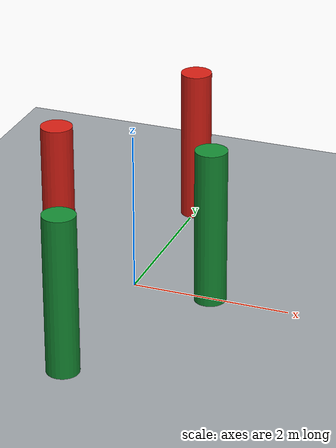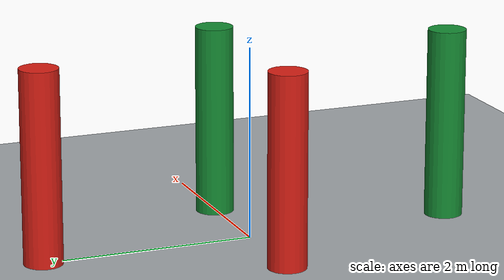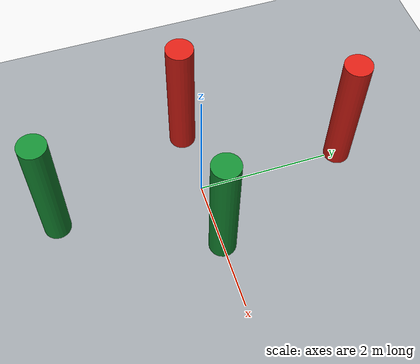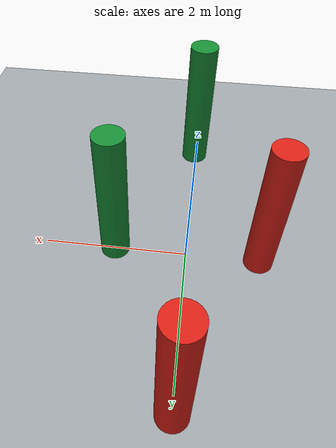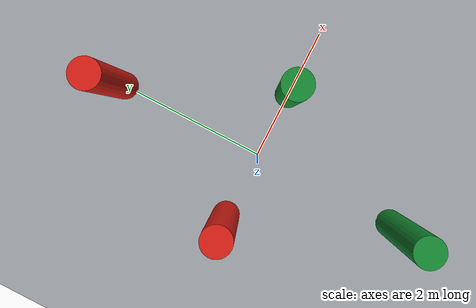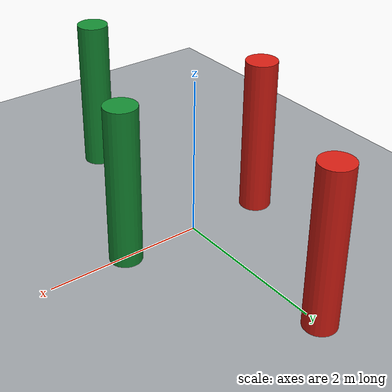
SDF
<sdf version="1.6">
 <world name="sunray150_single_uav_competition_light">
  <physics name="default_physics" type="ode">
   <gravity>0 0 -9.8066</gravity>
   <max_step_size>0.004</max_step_size>
   <real_time_factor>1.0</real_time_factor>
   <real_time_update_rate>250</real_time_update_rate>
  </physics>
  <plugin filename="ignition-gazebo-physics-system" name="gz::sim::systems::Physics"/>
  <plugin filename="ignition-gazebo-user-commands-system" name="gz::sim::systems::UserCommands"/>
  <plugin filename="ignition-gazebo-scene-broadcaster-system" name="gz::sim::systems::SceneBroadcaster"/>
  <plugin filename="ignition-gazebo-sensors-system" name="gz::sim::systems::Sensors">
   <render_engine>ogre</render_engine>
  </plugin>
  <plugin filename="ignition-gazebo-imu-system" name="gz::sim::systems::Imu"/>
  <scene><ambient>0.75 0.75 0.75 1</ambient><background>0.82 0.86 0.9 1</background><shadows>0</shadows></scene>
  <light type="directional" name="sun">
   <cast_shadows>false</cast_shadows>
   <pose>0 0 100 0 0 0</pose>
   <diffuse>0.8 0.8 0.8 1</diffuse>
   <specular>0.9 0.9 0.9 1</specular>
   <direction>0.2 0.2 -0.9</direction>
  </light>
  <model name="review_ground_plane">
   <static>true</static>
   <link name="link">
    <collision name="collision">
     <geometry><plane><normal>0 0 1</normal><size>18 18</size></plane></geometry>
    </collision>
    <visual name="visual">
     <geometry><plane><normal>0 0 1</normal><size>18 18</size></plane></geometry>
     <material>
      <ambient>0.62 0.64 0.66 1</ambient>
      <diffuse>0.62 0.64 0.66 1</diffuse>
      <specular>0.05 0.05 0.05 1</specular>
     </material>
    </visual>
   </link>
  </model>
  <include>
   <uri>model://cylinder_20cm</uri>
   <name>obstacle_center_left</name>
   <pose>-1.0 0.0 1.0 0 0 0</pose>
   <static>true</static>
  </include>
  <include>
   <uri>model://cylinder_20cm_green</uri>
   <name>obstacle_center_right</name>
   <pose>1.0 0.0 1.0 0 0 0</pose>
   <static>true</static>
  </include>
  <include>
   <uri>model://cylinder_20cm</uri>
   <name>obstacle_upper</name>
   <pose>0.0 2.2 1.0 0 0 0</pose>
   <static>true</static>
  </include>
  <include>
   <uri>model://cylinder_20cm_green</uri>
   <name>obstacle_lower</name>
   <pose>0.0 -2.2 1.0 0 0 0</pose>
   <static>true</static>
  </include>
 </world>
</sdf>

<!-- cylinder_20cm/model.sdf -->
<sdf version="1.7">
  <model name="cylinder_20cm">
    <static>true</static>
    <link name="link">
      <visual name="visual">
        <geometry>
          <cylinder>
            <radius>0.2</radius>
            <length>2</length>
          </cylinder>
        </geometry>
        <material>
          <ambient>0.85 0.12 0.08 1</ambient>
          <diffuse>0.85 0.12 0.08 1</diffuse>
          <specular>0.08 0.08 0.08 1</specular>
        </material>
      </visual>
      <collision name="collision">
        <geometry>
          <cylinder>
            <radius>0.2</radius>
            <length>2</length>
          </cylinder>
        </geometry>
      </collision>
      <inertial>
        <mass>1</mass>
        <inertia>
          <ixx>0.3358</ixx>
          <ixy>0</ixy>
          <ixz>0</ixz>
          <iyy>0.3358</iyy>
          <iyz>0</iyz>
          <izz>0.005</izz>
        </inertia>
      </inertial>
    </link>
  </model>
</sdf>

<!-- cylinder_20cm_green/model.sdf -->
<sdf version="1.7">
  <model name="cylinder_20cm_green">
    <static>true</static>
    <link name="link">
      <visual name="visual">
        <geometry>
          <cylinder>
            <radius>0.2</radius>
            <length>2</length>
          </cylinder>
        </geometry>
        <material>
          <ambient>0.08 0.55 0.2 1</ambient>
          <diffuse>0.08 0.55 0.2 1</diffuse>
          <specular>0.08 0.08 0.08 1</specular>
        </material>
      </visual>
      <collision name="collision">
        <geometry>
          <cylinder>
            <radius>0.2</radius>
            <length>2</length>
          </cylinder>
        </geometry>
      </collision>
      <inertial>
        <mass>1</mass>
        <inertia>
          <ixx>0.3358</ixx>
          <ixy>0</ixy>
          <ixz>0</ixz>
          <iyy>0.3358</iyy>
          <iyz>0</iyz>
          <izz>0.005</izz>
        </inertia>
      </inertial>
    </link>
  </model>
</sdf>
